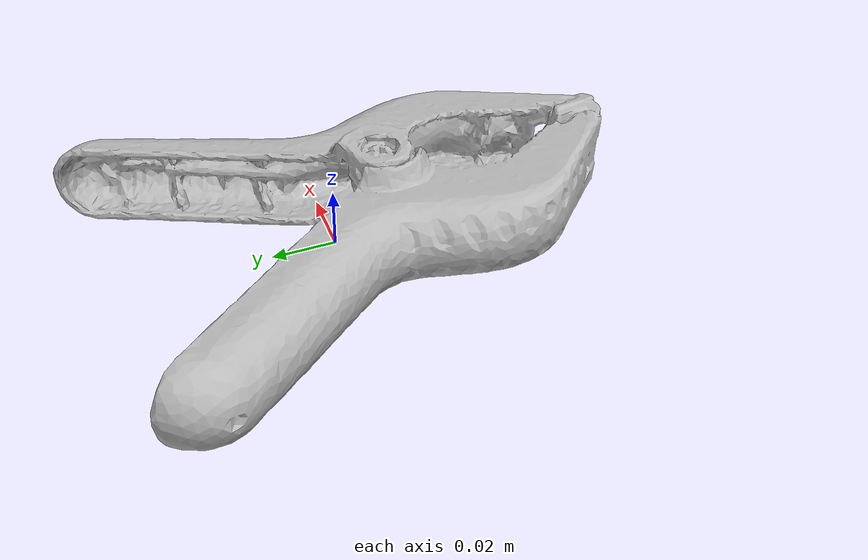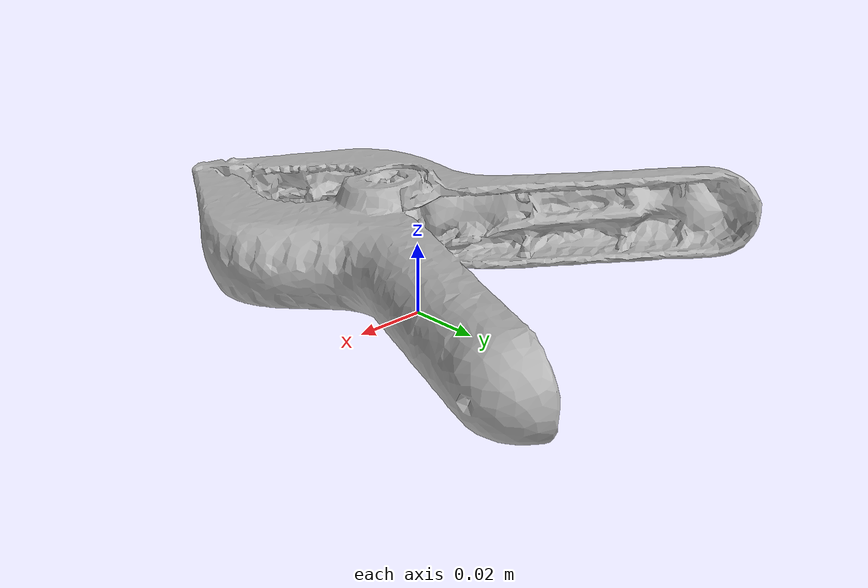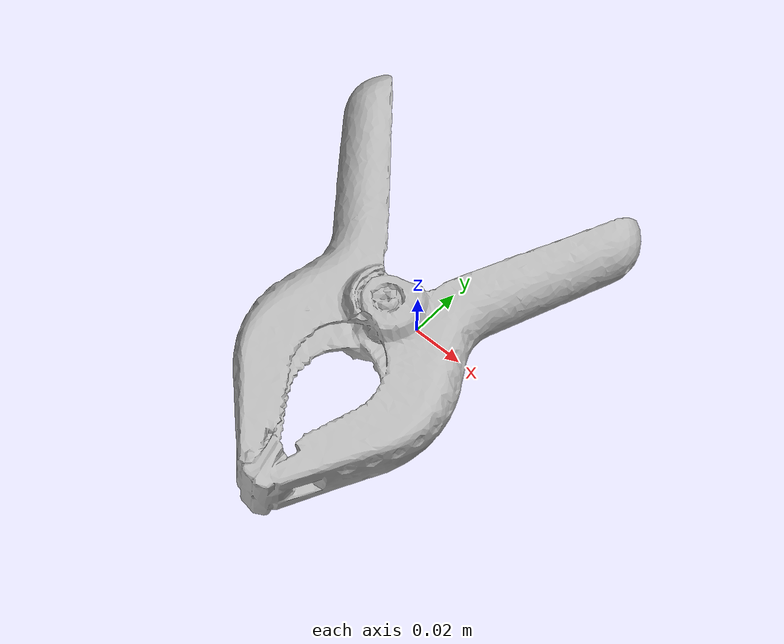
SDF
<?xml version='1.0'?>
<sdf version="1.4">
  <model name="large_clamp">
    <static>false</static>
    <link name="link">
      <inertial>
        <pose>-0.002385306258348233 -0.02157180507926319 0.01743690035150218 -0.9482863747092843 -1.463287382918126 -0.442755224357953</pose>
        <mass>8.957919455253867e-05</mass>
        <inertia>
          <ixx>2.077206733009775e-07</ixx>
          <ixy>-2.5847600540077503e-25</ixy>
          <ixz>9.664087008862497e-24</ixz>
          <iyy>1.4247370393773442e-07</iyy>
          <iyz>-6.0010705833482796e-24</iyz>
          <izz>7.683855784296298e-08</izz>
        </inertia>
      </inertial>
      <collision name="collision">
        <geometry>
          <mesh>
            <!-- Use a downsampled mesh for collisions -->
            <uri>model://051_large_clamp/google_16k/051_large_clamp.obj</uri>
            </mesh>
        </geometry>
        <surface>
          <friction>
            <ode>
              <mu>0.9</mu>
              <mu2>0.9</mu2>
            </ode>
          </friction>
          <contact>
            <ode>
              <kp>1000000000000.0</kp>
              <kd>1</kd>
              <min_depth>0.0001</min_depth>
              <max_vel>0.01</max_vel>
            </ode>
          </contact>
          <bounce>
            <restitution_coefficient>0.1</restitution_coefficient>
            <threshold>1000.0</threshold>
          </bounce>
        </surface>
      </collision>
      <visual name="visual">
        <geometry>
          <mesh>
            <uri>model://051_large_clamp/google_16k/051_large_clamp.dae</uri>
            </mesh>
        </geometry>
      </visual>
    </link>
  </model>
</sdf>
